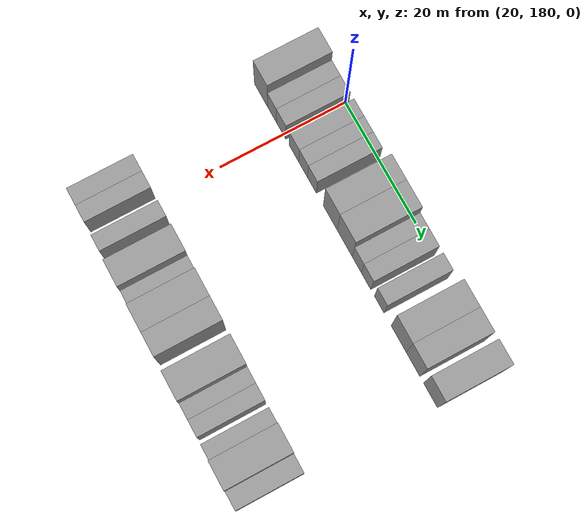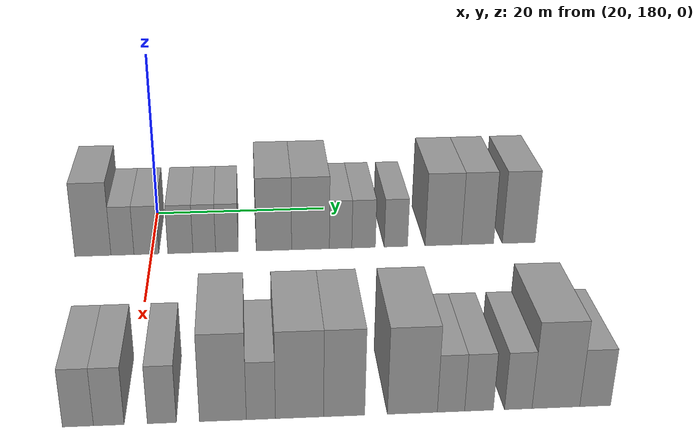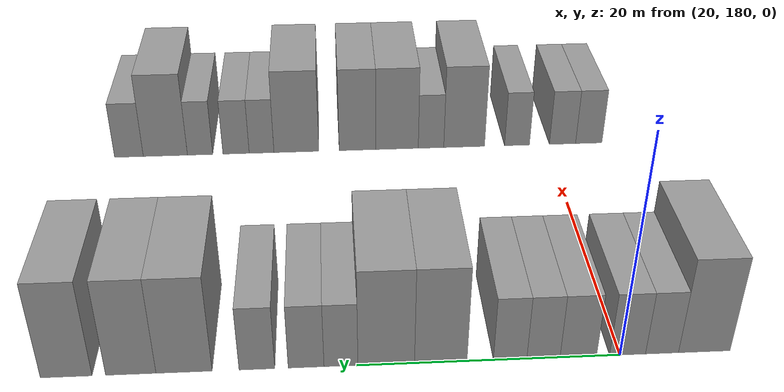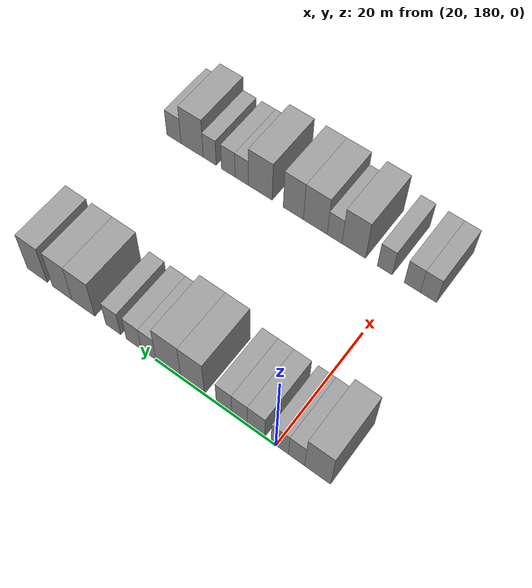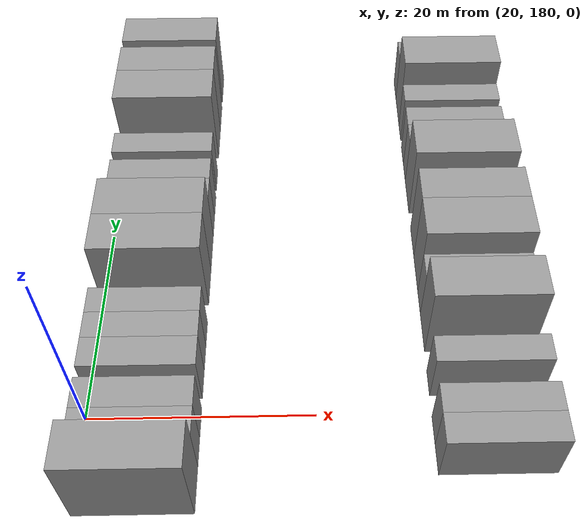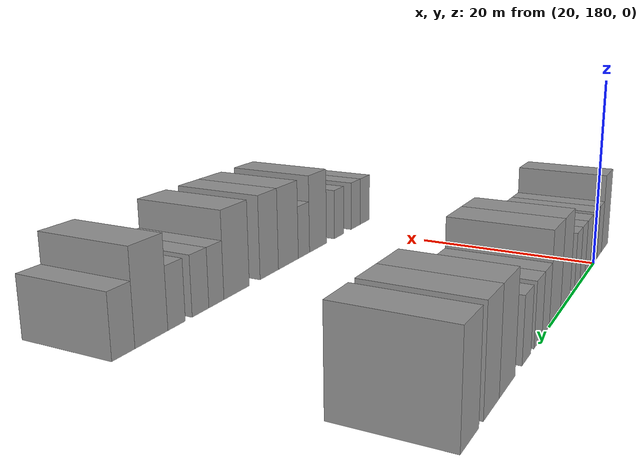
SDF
<sdf version="1.6">
 <world name="default">
  <model name="building_95">
   <static>1</static>
   <pose>25.0000 173.4944 0 0.000000 0.000000 0.000000</pose>
   <link name="link">
    <pose>0 0 4.50 0 0 0</pose>
    <collision name="collision"><geometry><box><size>10.0000 3.9935 9.0000</size></box></geometry></collision>
    <visual name="visual">
     <cast_shadows>0</cast_shadows>
     <geometry><box><size>10.0000 3.9935 9.0000</size></box></geometry>
     <material>
      <script>
       <uri>model://grey_wall/materials/scripts</uri>
       <uri>model://grey_wall/materials/textures</uri>
       <name>vrc/grey_wall</name>
      </script>
     </material>
    </visual>
   </link>
  </model>
  <model name="building_96">
   <static>1</static>
   <pose>25.0000 176.7638 0 0.000000 0.000000 0.000000</pose>
   <link name="link">
    <pose>0 0 3.00 0 0 0</pose>
    <collision name="collision"><geometry><box><size>10.0000 2.5451 6.0000</size></box></geometry></collision>
    <visual name="visual">
     <cast_shadows>0</cast_shadows>
     <geometry><box><size>10.0000 2.5451 6.0000</size></box></geometry>
     <material>
      <script>
       <uri>model://grey_wall/materials/scripts</uri>
       <uri>model://grey_wall/materials/textures</uri>
       <name>vrc/grey_wall</name>
      </script>
     </material>
    </visual>
   </link>
  </model>
  <model name="building_97">
   <static>1</static>
   <pose>25.0000 179.4166 0 0.000000 0.000000 0.000000</pose>
   <link name="link">
    <pose>0 0 3.00 0 0 0</pose>
    <collision name="collision"><geometry><box><size>10.0000 2.7605 6.0000</size></box></geometry></collision>
    <visual name="visual">
     <cast_shadows>0</cast_shadows>
     <geometry><box><size>10.0000 2.7605 6.0000</size></box></geometry>
     <material>
      <script>
       <uri>model://grey_wall/materials/scripts</uri>
       <uri>model://grey_wall/materials/textures</uri>
       <name>vrc/grey_wall</name>
      </script>
     </material>
    </visual>
   </link>
  </model>
  <model name="building_98">
   <static>1</static>
   <pose>25.0000 183.1963 0 0.000000 0.000000 0.000000</pose>
   <link name="link">
    <pose>0 0 3.00 0 0 0</pose>
    <collision name="collision"><geometry><box><size>10.0000 2.7990 6.0000</size></box></geometry></collision>
    <visual name="visual">
     <cast_shadows>0</cast_shadows>
     <geometry><box><size>10.0000 2.7990 6.0000</size></box></geometry>
     <material>
      <script>
       <uri>model://grey_wall/materials/scripts</uri>
       <uri>model://grey_wall/materials/textures</uri>
       <name>vrc/grey_wall</name>
      </script>
     </material>
    </visual>
   </link>
  </model>
  <model name="building_99">
   <static>1</static>
   <pose>25.0000 185.8635 0 0.000000 0.000000 0.000000</pose>
   <link name="link">
    <pose>0 0 3.00 0 0 0</pose>
    <collision name="collision"><geometry><box><size>10.0000 2.5354 6.0000</size></box></geometry></collision>
    <visual name="visual">
     <cast_shadows>0</cast_shadows>
     <geometry><box><size>10.0000 2.5354 6.0000</size></box></geometry>
     <material>
      <script>
       <uri>model://grey_wall/materials/scripts</uri>
       <uri>model://grey_wall/materials/textures</uri>
       <name>vrc/grey_wall</name>
      </script>
     </material>
    </visual>
   </link>
  </model>
  <model name="building_100">
   <static>1</static>
   <pose>25.0000 188.4048 0 0.000000 0.000000 0.000000</pose>
   <link name="link">
    <pose>0 0 3.00 0 0 0</pose>
    <collision name="collision"><geometry><box><size>10.0000 2.5472 6.0000</size></box></geometry></collision>
    <visual name="visual">
     <cast_shadows>0</cast_shadows>
     <geometry><box><size>10.0000 2.5472 6.0000</size></box></geometry>
     <material>
      <script>
       <uri>model://grey_wall/materials/scripts</uri>
       <uri>model://grey_wall/materials/textures</uri>
       <name>vrc/grey_wall</name>
      </script>
     </material>
    </visual>
   </link>
  </model>
  <model name="building_101">
   <static>1</static>
   <pose>25.0000 193.6667 0 0.000000 0.000000 0.000000</pose>
   <link name="link">
    <pose>0 0 4.50 0 0 0</pose>
    <collision name="collision"><geometry><box><size>10.0000 3.9764 9.0000</size></box></geometry></collision>
    <visual name="visual">
     <cast_shadows>0</cast_shadows>
     <geometry><box><size>10.0000 3.9764 9.0000</size></box></geometry>
     <material>
      <script>
       <uri>model://grey_wall/materials/scripts</uri>
       <uri>model://grey_wall/materials/textures</uri>
       <name>vrc/grey_wall</name>
      </script>
     </material>
    </visual>
   </link>
  </model>
  <model name="building_102">
   <static>1</static>
   <pose>25.0000 197.7877 0 0.000000 0.000000 0.000000</pose>
   <link name="link">
    <pose>0 0 4.50 0 0 0</pose>
    <collision name="collision"><geometry><box><size>10.0000 4.2657 9.0000</size></box></geometry></collision>
    <visual name="visual">
     <cast_shadows>0</cast_shadows>
     <geometry><box><size>10.0000 4.2657 9.0000</size></box></geometry>
     <material>
      <script>
       <uri>model://grey_wall/materials/scripts</uri>
       <uri>model://grey_wall/materials/textures</uri>
       <name>vrc/grey_wall</name>
      </script>
     </material>
    </visual>
   </link>
  </model>
  <model name="building_103">
   <static>1</static>
   <pose>25.0000 201.1918 0 0.000000 0.000000 0.000000</pose>
   <link name="link">
    <pose>0 0 3.00 0 0 0</pose>
    <collision name="collision"><geometry><box><size>10.0000 2.5424 6.0000</size></box></geometry></collision>
    <visual name="visual">
     <cast_shadows>0</cast_shadows>
     <geometry><box><size>10.0000 2.5424 6.0000</size></box></geometry>
     <material>
      <script>
       <uri>model://grey_wall/materials/scripts</uri>
       <uri>model://grey_wall/materials/textures</uri>
       <name>vrc/grey_wall</name>
      </script>
     </material>
    </visual>
   </link>
  </model>
  <model name="building_104">
   <static>1</static>
   <pose>25.0000 203.8011 0 0.000000 0.000000 0.000000</pose>
   <link name="link">
    <pose>0 0 3.00 0 0 0</pose>
    <collision name="collision"><geometry><box><size>10.0000 2.6762 6.0000</size></box></geometry></collision>
    <visual name="visual">
     <cast_shadows>0</cast_shadows>
     <geometry><box><size>10.0000 2.6762 6.0000</size></box></geometry>
     <material>
      <script>
       <uri>model://grey_wall/materials/scripts</uri>
       <uri>model://grey_wall/materials/textures</uri>
       <name>vrc/grey_wall</name>
      </script>
     </material>
    </visual>
   </link>
  </model>
  <model name="building_105">
   <static>1</static>
   <pose>25.0000 207.4703 0 0.000000 0.000000 0.000000</pose>
   <link name="link">
    <pose>0 0 3.00 0 0 0</pose>
    <collision name="collision"><geometry><box><size>10.0000 2.6621 6.0000</size></box></geometry></collision>
    <visual name="visual">
     <cast_shadows>0</cast_shadows>
     <geometry><box><size>10.0000 2.6621 6.0000</size></box></geometry>
     <material>
      <script>
       <uri>model://grey_wall/materials/scripts</uri>
       <uri>model://grey_wall/materials/textures</uri>
       <name>vrc/grey_wall</name>
      </script>
     </material>
    </visual>
   </link>
  </model>
  <model name="building_106">
   <static>1</static>
   <pose>25.0000 212.8797 0 0.000000 0.000000 0.000000</pose>
   <link name="link">
    <pose>0 0 4.50 0 0 0</pose>
    <collision name="collision"><geometry><box><size>10.0000 4.1568 9.0000</size></box></geometry></collision>
    <visual name="visual">
     <cast_shadows>0</cast_shadows>
     <geometry><box><size>10.0000 4.1568 9.0000</size></box></geometry>
     <material>
      <script>
       <uri>model://grey_wall/materials/scripts</uri>
       <uri>model://grey_wall/materials/textures</uri>
       <name>vrc/grey_wall</name>
      </script>
     </material>
    </visual>
   </link>
  </model>
  <model name="building_107">
   <static>1</static>
   <pose>25.0000 216.8110 0 0.000000 0.000000 0.000000</pose>
   <link name="link">
    <pose>0 0 4.50 0 0 0</pose>
    <collision name="collision"><geometry><box><size>10.0000 3.7057 9.0000</size></box></geometry></collision>
    <visual name="visual">
     <cast_shadows>0</cast_shadows>
     <geometry><box><size>10.0000 3.7057 9.0000</size></box></geometry>
     <material>
      <script>
       <uri>model://grey_wall/materials/scripts</uri>
       <uri>model://grey_wall/materials/textures</uri>
       <name>vrc/grey_wall</name>
      </script>
     </material>
    </visual>
   </link>
  </model>
  <model name="building_108">
   <static>1</static>
   <pose>25.0000 221.5571 0 0.000000 0.000000 0.000000</pose>
   <link name="link">
    <pose>0 0 4.50 0 0 0</pose>
    <collision name="collision"><geometry><box><size>10.0000 3.7865 9.0000</size></box></geometry></collision>
    <visual name="visual">
     <cast_shadows>0</cast_shadows>
     <geometry><box><size>10.0000 3.7865 9.0000</size></box></geometry>
     <material>
      <script>
       <uri>model://grey_wall/materials/scripts</uri>
       <uri>model://grey_wall/materials/textures</uri>
       <name>vrc/grey_wall</name>
      </script>
     </material>
    </visual>
   </link>
  </model>
  <model name="building_203">
   <static>1</static>
   <pose>55.0000 175.7478 0 0.000000 0.000000 0.000000</pose>
   <link name="link">
    <pose>0 0 3.00 0 0 0</pose>
    <collision name="collision"><geometry><box><size>10.0000 2.6594 6.0000</size></box></geometry></collision>
    <visual name="visual">
     <cast_shadows>0</cast_shadows>
     <geometry><box><size>10.0000 2.6594 6.0000</size></box></geometry>
     <material>
      <script>
       <uri>model://grey_wall/materials/scripts</uri>
       <uri>model://grey_wall/materials/textures</uri>
       <name>vrc/grey_wall</name>
      </script>
     </material>
    </visual>
   </link>
  </model>
  <model name="building_204">
   <static>1</static>
   <pose>55.0000 178.3940 0 0.000000 0.000000 0.000000</pose>
   <link name="link">
    <pose>0 0 3.00 0 0 0</pose>
    <collision name="collision"><geometry><box><size>10.0000 2.6329 6.0000</size></box></geometry></collision>
    <visual name="visual">
     <cast_shadows>0</cast_shadows>
     <geometry><box><size>10.0000 2.6329 6.0000</size></box></geometry>
     <material>
      <script>
       <uri>model://grey_wall/materials/scripts</uri>
       <uri>model://grey_wall/materials/textures</uri>
       <name>vrc/grey_wall</name>
      </script>
     </material>
    </visual>
   </link>
  </model>
  <model name="building_205">
   <static>1</static>
   <pose>55.0000 182.9602 0 0.000000 0.000000 0.000000</pose>
   <link name="link">
    <pose>0 0 3.00 0 0 0</pose>
    <collision name="collision"><geometry><box><size>10.0000 2.4994 6.0000</size></box></geometry></collision>
    <visual name="visual">
     <cast_shadows>0</cast_shadows>
     <geometry><box><size>10.0000 2.4994 6.0000</size></box></geometry>
     <material>
      <script>
       <uri>model://grey_wall/materials/scripts</uri>
       <uri>model://grey_wall/materials/textures</uri>
       <name>vrc/grey_wall</name>
      </script>
     </material>
    </visual>
   </link>
  </model>
  <model name="building_206">
   <static>1</static>
   <pose>55.0000 188.2474 0 0.000000 0.000000 0.000000</pose>
   <link name="link">
    <pose>0 0 4.50 0 0 0</pose>
    <collision name="collision"><geometry><box><size>10.0000 4.0749 9.0000</size></box></geometry></collision>
    <visual name="visual">
     <cast_shadows>0</cast_shadows>
     <geometry><box><size>10.0000 4.0749 9.0000</size></box></geometry>
     <material>
      <script>
       <uri>model://grey_wall/materials/scripts</uri>
       <uri>model://grey_wall/materials/textures</uri>
       <name>vrc/grey_wall</name>
      </script>
     </material>
    </visual>
   </link>
  </model>
  <model name="building_207">
   <static>1</static>
   <pose>55.0000 191.5535 0 0.000000 0.000000 0.000000</pose>
   <link name="link">
    <pose>0 0 3.00 0 0 0</pose>
    <collision name="collision"><geometry><box><size>10.0000 2.5375 6.0000</size></box></geometry></collision>
    <visual name="visual">
     <cast_shadows>0</cast_shadows>
     <geometry><box><size>10.0000 2.5375 6.0000</size></box></geometry>
     <material>
      <script>
       <uri>model://grey_wall/materials/scripts</uri>
       <uri>model://grey_wall/materials/textures</uri>
       <name>vrc/grey_wall</name>
      </script>
     </material>
    </visual>
   </link>
  </model>
  <model name="building_208">
   <static>1</static>
   <pose>55.0000 194.9297 0 0.000000 0.000000 0.000000</pose>
   <link name="link">
    <pose>0 0 4.50 0 0 0</pose>
    <collision name="collision"><geometry><box><size>10.0000 4.2149 9.0000</size></box></geometry></collision>
    <visual name="visual">
     <cast_shadows>0</cast_shadows>
     <geometry><box><size>10.0000 4.2149 9.0000</size></box></geometry>
     <material>
      <script>
       <uri>model://grey_wall/materials/scripts</uri>
       <uri>model://grey_wall/materials/textures</uri>
       <name>vrc/grey_wall</name>
      </script>
     </material>
    </visual>
   </link>
  </model>
  <model name="building_209">
   <static>1</static>
   <pose>55.0000 198.8452 0 0.000000 0.000000 0.000000</pose>
   <link name="link">
    <pose>0 0 4.50 0 0 0</pose>
    <collision name="collision"><geometry><box><size>10.0000 3.6161 9.0000</size></box></geometry></collision>
    <visual name="visual">
     <cast_shadows>0</cast_shadows>
     <geometry><box><size>10.0000 3.6161 9.0000</size></box></geometry>
     <material>
      <script>
       <uri>model://grey_wall/materials/scripts</uri>
       <uri>model://grey_wall/materials/textures</uri>
       <name>vrc/grey_wall</name>
      </script>
     </material>
    </visual>
   </link>
  </model>
  <model name="building_210">
   <static>1</static>
   <pose>55.0000 204.8640 0 0.000000 0.000000 0.000000</pose>
   <link name="link">
    <pose>0 0 4.50 0 0 0</pose>
    <collision name="collision"><geometry><box><size>10.0000 4.4215 9.0000</size></box></geometry></collision>
    <visual name="visual">
     <cast_shadows>0</cast_shadows>
     <geometry><box><size>10.0000 4.4215 9.0000</size></box></geometry>
     <material>
      <script>
       <uri>model://grey_wall/materials/scripts</uri>
       <uri>model://grey_wall/materials/textures</uri>
       <name>vrc/grey_wall</name>
      </script>
     </material>
    </visual>
   </link>
  </model>
  <model name="building_211">
   <static>1</static>
   <pose>55.0000 208.2895 0 0.000000 0.000000 0.000000</pose>
   <link name="link">
    <pose>0 0 3.00 0 0 0</pose>
    <collision name="collision"><geometry><box><size>10.0000 2.4293 6.0000</size></box></geometry></collision>
    <visual name="visual">
     <cast_shadows>0</cast_shadows>
     <geometry><box><size>10.0000 2.4293 6.0000</size></box></geometry>
     <material>
      <script>
       <uri>model://grey_wall/materials/scripts</uri>
       <uri>model://grey_wall/materials/textures</uri>
       <name>vrc/grey_wall</name>
      </script>
     </material>
    </visual>
   </link>
  </model>
  <model name="building_212">
   <static>1</static>
   <pose>55.0000 210.7860 0 0.000000 0.000000 0.000000</pose>
   <link name="link">
    <pose>0 0 3.00 0 0 0</pose>
    <collision name="collision"><geometry><box><size>10.0000 2.5638 6.0000</size></box></geometry></collision>
    <visual name="visual">
     <cast_shadows>0</cast_shadows>
     <geometry><box><size>10.0000 2.5638 6.0000</size></box></geometry>
     <material>
      <script>
       <uri>model://grey_wall/materials/scripts</uri>
       <uri>model://grey_wall/materials/textures</uri>
       <name>vrc/grey_wall</name>
      </script>
     </material>
    </visual>
   </link>
  </model>
  <model name="building_213">
   <static>1</static>
   <pose>55.0000 214.2991 0 0.000000 0.000000 0.000000</pose>
   <link name="link">
    <pose>0 0 3.00 0 0 0</pose>
    <collision name="collision"><geometry><box><size>10.0000 2.4624 6.0000</size></box></geometry></collision>
    <visual name="visual">
     <cast_shadows>0</cast_shadows>
     <geometry><box><size>10.0000 2.4624 6.0000</size></box></geometry>
     <material>
      <script>
       <uri>model://grey_wall/materials/scripts</uri>
       <uri>model://grey_wall/materials/textures</uri>
       <name>vrc/grey_wall</name>
      </script>
     </material>
    </visual>
   </link>
  </model>
  <model name="building_214">
   <static>1</static>
   <pose>55.0000 217.6780 0 0.000000 0.000000 0.000000</pose>
   <link name="link">
    <pose>0 0 4.50 0 0 0</pose>
    <collision name="collision"><geometry><box><size>10.0000 4.2953 9.0000</size></box></geometry></collision>
    <visual name="visual">
     <cast_shadows>0</cast_shadows>
     <geometry><box><size>10.0000 4.2953 9.0000</size></box></geometry>
     <material>
      <script>
       <uri>model://grey_wall/materials/scripts</uri>
       <uri>model://grey_wall/materials/textures</uri>
       <name>vrc/grey_wall</name>
      </script>
     </material>
    </visual>
   </link>
  </model>
  <model name="building_215">
   <static>1</static>
   <pose>55.0000 221.2164 0 0.000000 0.000000 0.000000</pose>
   <link name="link">
    <pose>0 0 3.00 0 0 0</pose>
    <collision name="collision"><geometry><box><size>10.0000 2.7814 6.0000</size></box></geometry></collision>
    <visual name="visual">
     <cast_shadows>0</cast_shadows>
     <geometry><box><size>10.0000 2.7814 6.0000</size></box></geometry>
     <material>
      <script>
       <uri>model://grey_wall/materials/scripts</uri>
       <uri>model://grey_wall/materials/textures</uri>
       <name>vrc/grey_wall</name>
      </script>
     </material>
    </visual>
   </link>
  </model>
 </world>
</sdf>
